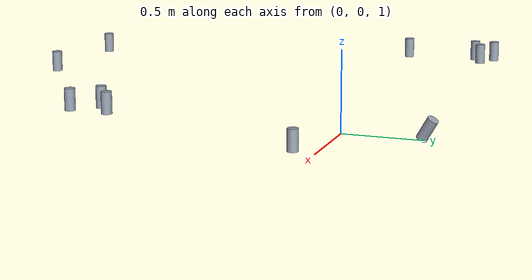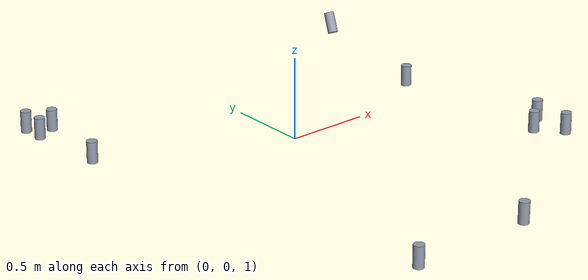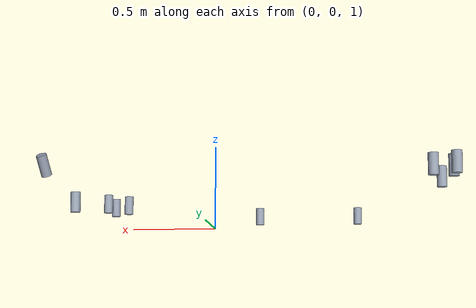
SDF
<?xml version="1.0"?>
<!-- created with Phobos 1.0.1 "Capricious Choutengan" -->
<sdf version="1.5">
  <model name="Kitchen_dynamic">
    <link name="soda_can.007">
      <pose>-1.40662 0.63933 1.29284 0 0 0</pose>
      <inertial>
        <mass>0.384</mass>
        <inertia>
          <ixx>0.001</ixx>
          <ixy>0</ixy>
          <ixz>0</ixz>
          <iyy>0.001</iyy>
          <iyz>0</iyz>
          <izz>0.001</izz>
        </inertia>
        <pose>0 0 0 0 0 0</pose>
      </inertial>
      <collision name="Cylinder">
        <pose>0 0 0 0 0 0</pose>
        <geometry>
          <cylinder>
            <radius>0.03</radius>
            <length>0.125</length>
          </cylinder>
        </geometry>
      </collision>
      <visual name="Cylinder.007">
        <pose>1.1920928955078125e-07 5.960464477539063e-08 0.0 0.0 -0.0 -2.9802322387695312e-08</pose>
        <material>
          <ambient>0.58515 0.62219 0.62219 1.0</ambient>
          <diffuse>0.58515 0.62219 0.68398 1.0</diffuse>
          <specular>0.5 0.5 0.5 1.0</specular>
        </material>
        <geometry>
          <cylinder>
            <radius>0.03</radius>
            <length>0.125</length>
          </cylinder>
        </geometry>
      </visual>
    </link>
    <link name="soda_can.009">
      <pose>-1.28198 0.56922 1.29284 0 0 0</pose>
      <inertial>
        <mass>0.384</mass>
        <inertia>
          <ixx>0.001</ixx>
          <ixy>0</ixy>
          <ixz>0</ixz>
          <iyy>0.001</iyy>
          <iyz>0</iyz>
          <izz>0.001</izz>
        </inertia>
        <pose>0 0 0 0 0 0</pose>
      </inertial>
      <collision name="Cylinder">
        <pose>0 0 0 0 0 0</pose>
        <geometry>
          <cylinder>
            <radius>0.03</radius>
            <length>0.125</length>
          </cylinder>
        </geometry>
      </collision>
      <visual name="Cylinder.009">
        <pose>1.1920928955078125e-07 0.0 -1.1920928955078125e-07 0.0 -0.0 0.0</pose>
        <material>
          <ambient>0.58515 0.62219 0.62219 1.0</ambient>
          <diffuse>0.58515 0.62219 0.68398 1.0</diffuse>
          <specular>0.5 0.5 0.5 1.0</specular>
        </material>
        <geometry>
          <cylinder>
            <radius>0.03</radius>
            <length>0.125</length>
          </cylinder>
        </geometry>
      </visual>
    </link>
    <link name="soda_can">
      <pose>0.86525 0 1.17317 0 0 0</pose>
      <inertial>
        <mass>0.384</mass>
        <inertia>
          <ixx>0.001</ixx>
          <ixy>0</ixy>
          <ixz>0</ixz>
          <iyy>0.001</iyy>
          <iyz>0</iyz>
          <izz>0.001</izz>
        </inertia>
        <pose>0 0 0 0 0 0</pose>
      </inertial>
      <collision name="Cylinder">
        <pose>0 0 0 0 0 0</pose>
        <geometry>
          <cylinder>
            <radius>0.03</radius>
            <length>0.125</length>
          </cylinder>
        </geometry>
      </collision>
      <visual name="Cylinder">
        <pose>-5.960464477539063e-08 0.0 -1.1920928955078125e-07 0.0 -0.0 0.0</pose>
        <material>
          <ambient>0.58515 0.62219 0.62219 1.0</ambient>
          <diffuse>0.58515 0.62219 0.68398 1.0</diffuse>
          <specular>0.5 0.5 0.5 1.0</specular>
        </material>
        <geometry>
          <cylinder>
            <radius>0.03</radius>
            <length>0.125</length>
          </cylinder>
        </geometry>
      </visual>
    </link>
    <link name="soda_can.006">
      <pose>-1.35988 0.07068 1.29284 0 0 0</pose>
      <inertial>
        <mass>0.384</mass>
        <inertia>
          <ixx>0.001</ixx>
          <ixy>0</ixy>
          <ixz>0</ixz>
          <iyy>0.001</iyy>
          <iyz>0</iyz>
          <izz>0.001</izz>
        </inertia>
        <pose>0 0 0 0 0 0</pose>
      </inertial>
      <collision name="Cylinder">
        <pose>0 0 0 0 0 0</pose>
        <geometry>
          <cylinder>
            <radius>0.03</radius>
            <length>0.125</length>
          </cylinder>
        </geometry>
      </collision>
      <visual name="Cylinder.006">
        <pose>0.0 0.0 -1.1920928955078125e-07 0.0 -0.0 0.0</pose>
        <material>
          <ambient>0.58515 0.62219 0.62219 1.0</ambient>
          <diffuse>0.58515 0.62219 0.68398 1.0</diffuse>
          <specular>0.5 0.5 0.5 1.0</specular>
        </material>
        <geometry>
          <cylinder>
            <radius>0.03</radius>
            <length>0.125</length>
          </cylinder>
        </geometry>
      </visual>
    </link>
    <link name="soda_can.003">
      <pose>0.86922 -1.29444 1.29284 0 0 0</pose>
      <inertial>
        <mass>0.384</mass>
        <inertia>
          <ixx>0.001</ixx>
          <ixy>0</ixy>
          <ixz>0</ixz>
          <iyy>0.001</iyy>
          <iyz>0</iyz>
          <izz>0.001</izz>
        </inertia>
        <pose>0 0 0 0 0 0</pose>
      </inertial>
      <collision name="Cylinder">
        <pose>0 0 0 0 0 0</pose>
        <geometry>
          <cylinder>
            <radius>0.03</radius>
            <length>0.125</length>
          </cylinder>
        </geometry>
      </collision>
      <visual name="Cylinder.003">
        <pose>0.0 0.0 0.0 -5.960464477539063e-08 -0.0 0.0</pose>
        <material>
          <ambient>0.58515 0.62219 0.62219 1.0</ambient>
          <diffuse>0.58515 0.62219 0.68398 1.0</diffuse>
          <specular>0.5 0.5 0.5 1.0</specular>
        </material>
        <geometry>
          <cylinder>
            <radius>0.03</radius>
            <length>0.125</length>
          </cylinder>
        </geometry>
      </visual>
    </link>
    <link name="root_dynamic">
      <pose>0 0 1.0 0 0 0</pose>
      <inertial>
        <mass>0.384</mass>
        <inertia>
          <ixx>0.001</ixx>
          <ixy>0</ixy>
          <ixz>0</ixz>
          <iyy>0.001</iyy>
          <iyz>0</iyz>
          <izz>0.001</izz>
        </inertia>
        <pose>0 0 0 0 0 0</pose>
      </inertial>
    </link>
    <link name="soda_can.010">
      <pose>0.88357 0.70944 1.29284 -0.4839 0.24643 0.13641</pose>
      <inertial>
        <mass>0.384</mass>
        <inertia>
          <ixx>0.001</ixx>
          <ixy>0</ixy>
          <ixz>0</ixz>
          <iyy>0.001</iyy>
          <iyz>0</iyz>
          <izz>0.001</izz>
        </inertia>
        <pose>0 0 0 0 0 0</pose>
      </inertial>
      <collision name="Cylinder">
        <pose>0 0 0 0 0 0</pose>
        <geometry>
          <cylinder>
            <radius>0.03</radius>
            <length>0.125</length>
          </cylinder>
        </geometry>
      </collision>
      <visual name="Cylinder.010">
        <pose>-1.1920928955078125e-07 7.450580596923828e-08 -2.384185791015625e-07 2.9802322387695312e-08 -1.4901162970204496e-08 -1.4901162970204496e-08</pose>
        <material>
          <ambient>0.58515 0.62219 0.62219 1.0</ambient>
          <diffuse>0.58515 0.62219 0.68398 1.0</diffuse>
          <specular>0.5 0.5 0.5 1.0</specular>
        </material>
        <geometry>
          <cylinder>
            <radius>0.03</radius>
            <length>0.125</length>
          </cylinder>
        </geometry>
      </visual>
    </link>
    <link name="soda_can.004">
      <pose>-0.11352 -1.93908 1.29284 0 0 0</pose>
      <inertial>
        <mass>0.384</mass>
        <inertia>
          <ixx>0.001</ixx>
          <ixy>0</ixy>
          <ixz>0</ixz>
          <iyy>0.001</iyy>
          <iyz>0</iyz>
          <izz>0.001</izz>
        </inertia>
        <pose>0 0 0 0 0 0</pose>
      </inertial>
      <collision name="Cylinder">
        <pose>0 0 0 0 0 0</pose>
        <geometry>
          <cylinder>
            <radius>0.03</radius>
            <length>0.125</length>
          </cylinder>
        </geometry>
      </collision>
      <visual name="Cylinder.004">
        <pose>-5.960464477539063e-08 0.0 -1.1920928955078125e-07 0.0 -0.0 0.0</pose>
        <material>
          <ambient>0.58515 0.62219 0.62219 1.0</ambient>
          <diffuse>0.58515 0.62219 0.68398 1.0</diffuse>
          <specular>0.5 0.5 0.5 1.0</specular>
        </material>
        <geometry>
          <cylinder>
            <radius>0.03</radius>
            <length>0.125</length>
          </cylinder>
        </geometry>
      </visual>
    </link>
    <link name="soda_can.008">
      <pose>-1.39883 0.5147 1.29284 0 0 0</pose>
      <inertial>
        <mass>0.384</mass>
        <inertia>
          <ixx>0.001</ixx>
          <ixy>0</ixy>
          <ixz>0</ixz>
          <iyy>0.001</iyy>
          <iyz>0</iyz>
          <izz>0.001</izz>
        </inertia>
        <pose>0 0 0 0 0 0</pose>
      </inertial>
      <collision name="Cylinder">
        <pose>0 0 0 0 0 0</pose>
        <geometry>
          <cylinder>
            <radius>0.03</radius>
            <length>0.125</length>
          </cylinder>
        </geometry>
      </collision>
      <visual name="Cylinder.008">
        <pose>0.0 0.0 -1.1920928955078125e-07 0.0 -0.0 0.0</pose>
        <material>
          <ambient>0.58515 0.62219 0.62219 1.0</ambient>
          <diffuse>0.58515 0.62219 0.68398 1.0</diffuse>
          <specular>0.5 0.5 0.5 1.0</specular>
        </material>
        <geometry>
          <cylinder>
            <radius>0.03</radius>
            <length>0.125</length>
          </cylinder>
        </geometry>
      </visual>
    </link>
    <link name="soda_can.002">
      <pose>0.87823 -1.06453 1.29284 0 0 0</pose>
      <inertial>
        <mass>0.384</mass>
        <inertia>
          <ixx>0.001</ixx>
          <ixy>0</ixy>
          <ixz>0</ixz>
          <iyy>0.001</iyy>
          <iyz>0</iyz>
          <izz>0.001</izz>
        </inertia>
        <pose>0 0 0 0 0 0</pose>
      </inertial>
      <collision name="Cylinder">
        <pose>0 0 0 0 0 0</pose>
        <geometry>
          <cylinder>
            <radius>0.03</radius>
            <length>0.125</length>
          </cylinder>
        </geometry>
      </collision>
      <visual name="Cylinder.002">
        <pose>-5.960464477539063e-08 0.0 -2.384185791015625e-07 0.0 -0.0 0.0</pose>
        <material>
          <ambient>0.58515 0.62219 0.62219 1.0</ambient>
          <diffuse>0.58515 0.62219 0.68398 1.0</diffuse>
          <specular>0.5 0.5 0.5 1.0</specular>
        </material>
        <geometry>
          <cylinder>
            <radius>0.03</radius>
            <length>0.125</length>
          </cylinder>
        </geometry>
      </visual>
    </link>
    <link name="soda_can.005">
      <pose>-0.85354 -1.95466 1.29284 0 0 0</pose>
      <inertial>
        <mass>0.384</mass>
        <inertia>
          <ixx>0.001</ixx>
          <ixy>0</ixy>
          <ixz>0</ixz>
          <iyy>0.001</iyy>
          <iyz>0</iyz>
          <izz>0.001</izz>
        </inertia>
        <pose>0 0 0 0 0 0</pose>
      </inertial>
      <collision name="Cylinder">
        <pose>0 0 0 0 0 0</pose>
        <geometry>
          <cylinder>
            <radius>0.03</radius>
            <length>0.125</length>
          </cylinder>
        </geometry>
      </collision>
      <visual name="Cylinder.005">
        <pose>-1.7881393432617188e-07 -1.1920928955078125e-07 0.0 0.0 -0.0 0.0</pose>
        <material>
          <ambient>0.58515 0.62219 0.62219 1.0</ambient>
          <diffuse>0.58515 0.62219 0.68398 1.0</diffuse>
          <specular>0.5 0.5 0.5 1.0</specular>
        </material>
        <geometry>
          <cylinder>
            <radius>0.03</radius>
            <length>0.125</length>
          </cylinder>
        </geometry>
      </visual>
    </link>
    <link name="soda_can.001">
      <pose>0.75201 -1.16371 1.29284 0 0 0</pose>
      <inertial>
        <mass>0.384</mass>
        <inertia>
          <ixx>0.001</ixx>
          <ixy>0</ixy>
          <ixz>0</ixz>
          <iyy>0.001</iyy>
          <iyz>0</iyz>
          <izz>0.001</izz>
        </inertia>
        <pose>0 0 0 0 0 0</pose>
      </inertial>
      <collision name="Cylinder">
        <pose>0 0 0 0 0 0</pose>
        <geometry>
          <cylinder>
            <radius>0.03</radius>
            <length>0.125</length>
          </cylinder>
        </geometry>
      </collision>
      <visual name="Cylinder.001">
        <pose>-1.7881393432617188e-07 1.1920928955078125e-07 -2.384185791015625e-07 7.705914839561956e-08 -0.0 0.0</pose>
        <material>
          <ambient>0.58515 0.62219 0.62219 1.0</ambient>
          <diffuse>0.58515 0.62219 0.68398 1.0</diffuse>
          <specular>0.5 0.5 0.5 1.0</specular>
        </material>
        <geometry>
          <cylinder>
            <radius>0.03</radius>
            <length>0.125</length>
          </cylinder>
        </geometry>
      </visual>
    </link>
    <joint type="TODO" name="soda_can.007">
      <parent>root_dynamic</parent>
      <child>soda_can.007</child>
      <pose>0.0 0.0 0.0 0.0 0.0 0.0</pose>
    </joint>
    <joint type="TODO" name="soda_can.009">
      <parent>root_dynamic</parent>
      <child>soda_can.009</child>
      <pose>0.0 0.0 0.0 0.0 0.0 0.0</pose>
    </joint>
    <joint type="TODO" name="soda_can.004">
      <parent>root_dynamic</parent>
      <child>soda_can.004</child>
      <pose>0.0 0.0 0.0 0.0 0.0 0.0</pose>
    </joint>
    <joint type="TODO" name="soda_can.006">
      <parent>root_dynamic</parent>
      <child>soda_can.006</child>
      <pose>0.0 0.0 0.0 0.0 0.0 0.0</pose>
    </joint>
    <joint type="TODO" name="soda_can.008">
      <parent>root_dynamic</parent>
      <child>soda_can.008</child>
      <pose>0.0 0.0 0.0 0.0 0.0 0.0</pose>
    </joint>
    <joint type="TODO" name="soda_can.002">
      <parent>root_dynamic</parent>
      <child>soda_can.002</child>
      <pose>0.0 0.0 0.0 0.0 0.0 0.0</pose>
    </joint>
    <joint type="TODO" name="soda_can.005">
      <parent>root_dynamic</parent>
      <child>soda_can.005</child>
      <pose>0.0 0.0 0.0 0.0 0.0 0.0</pose>
    </joint>
    <joint type="TODO" name="soda_can.003">
      <parent>root_dynamic</parent>
      <child>soda_can.003</child>
      <pose>0.0 0.0 0.0 0.0 0.0 0.0</pose>
    </joint>
    <joint type="TODO" name="soda_can">
      <parent>root_dynamic</parent>
      <child>soda_can</child>
      <pose>0.0 0.0 0.0 0.0 0.0 0.0</pose>
    </joint>
    <joint type="TODO" name="soda_can.001">
      <parent>root_dynamic</parent>
      <child>soda_can.001</child>
      <pose>0.0 0.0 0.0 0.0 0.0 0.0</pose>
    </joint>
    <joint type="TODO" name="soda_can.010">
      <parent>root_dynamic</parent>
      <child>soda_can.010</child>
      <pose>0.0 0.0 0.0 0.0 0.0 0.0</pose>
    </joint>
  </model>
</sdf>
